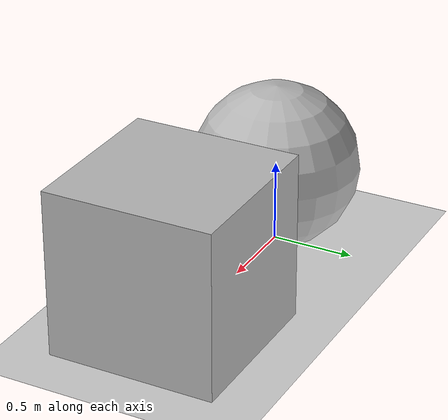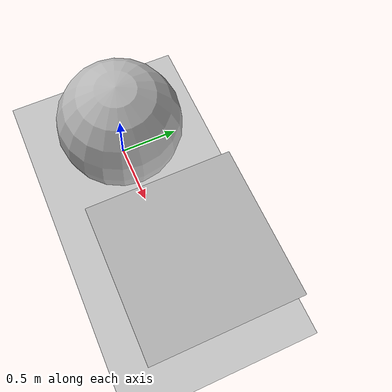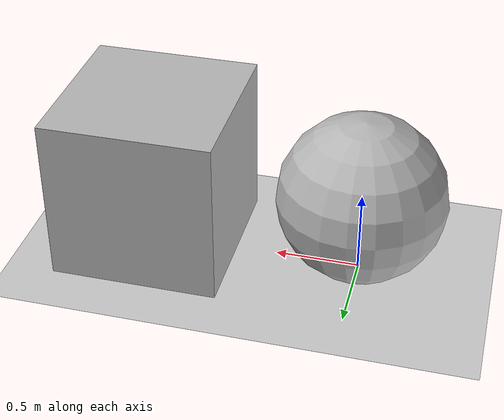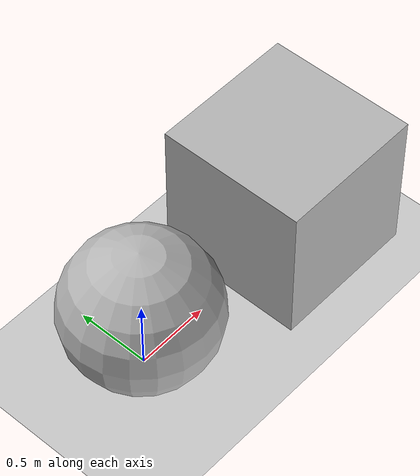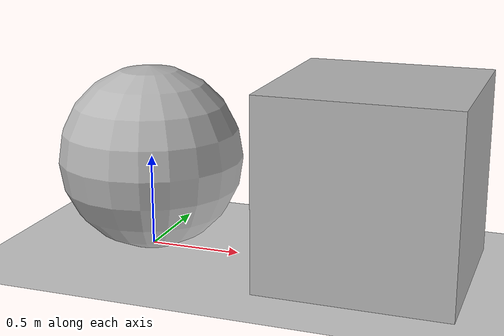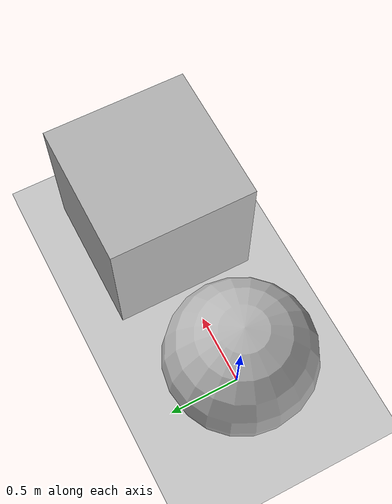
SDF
<sdf version="1.6">
 <world name="default">
  <light name="sun" type="directional">
   <pose>0 0 10 0 -0 0</pose>
   <diffuse>0.8 0.8 0.8 1</diffuse>
   <specular>0.2 0.2 0.2 1</specular>
   <attenuation>
    <range>1000</range>
    <constant>0.9</constant>
    <linear>0.01</linear>
    <quadratic>0.001</quadratic>
   </attenuation>
   <direction>-0.5 0.1 -0.9</direction>
  </light>
  <model name="ground_plane">
   <static>1</static>
   <link name="link">
    <collision name="collision">
     <geometry><plane><normal>0 0 1</normal><size>100 100</size></plane></geometry>
     <surface><friction><ode><mu>100</mu><mu2>50</mu2></ode></friction></surface>
    </collision>
    <visual name="visual">
     <cast_shadows>0</cast_shadows>
     <geometry><plane><normal>0 0 1</normal><size>100 100</size></plane></geometry>
     <material>
      <script><uri>file://media/materials/scripts/gazebo.material</uri><name>Gazebo/Grey</name></script>
     </material>
    </visual>
   </link>
  </model>
  <model name="model_00">
   <joint name="joint_00" type="revolute">
    <parent>link_00</parent>
    <child>model_01::link_01</child>
    <axis><xyz>1.0 0.0 0.0</xyz></axis>
   </joint>
   <pose>0 0 0.5 0 0 0</pose>
   <link name="link_00">
    <collision name="collision_00"><geometry><sphere><radius>0.5</radius></sphere></geometry></collision>
    <visual name="visual_00"><geometry><sphere><radius>0.5</radius></sphere></geometry></visual>
   </link>
   <model name="model_01">
    <pose>1.0 0 0.0 0 0 0</pose>
    <link name="link_01">
     <pose>0.25 0 0.0 0 0 0</pose>
     <collision name="collision_01"><geometry><box><size>1 1 1</size></box></geometry></collision>
     <visual name="visual_01"><geometry><box><size>1 1 1</size></box></geometry></visual>
    </link>
   </model>
  </model>
  <gravity>0 0 -9.8</gravity>
  <magnetic_field>6e-06 2.3e-05 -4.2e-05</magnetic_field>
  <atmosphere type="adiabatic"/>
  <physics name="default_physics" default="0" type="ode">
   <max_step_size>0.001</max_step_size>
   <real_time_factor>1</real_time_factor>
   <real_time_update_rate>1000</real_time_update_rate>
  </physics>
  <scene><ambient>0.4 0.4 0.4 1</ambient><background>0.7 0.7 0.7 1</background><shadows>1</shadows></scene>
  <spherical_coordinates>
   <surface_model>EARTH_WGS84</surface_model>
   <latitude_deg>0</latitude_deg>
   <longitude_deg>0</longitude_deg>
   <elevation>0</elevation>
   <heading_deg>0</heading_deg>
  </spherical_coordinates>
 </world>
</sdf>
